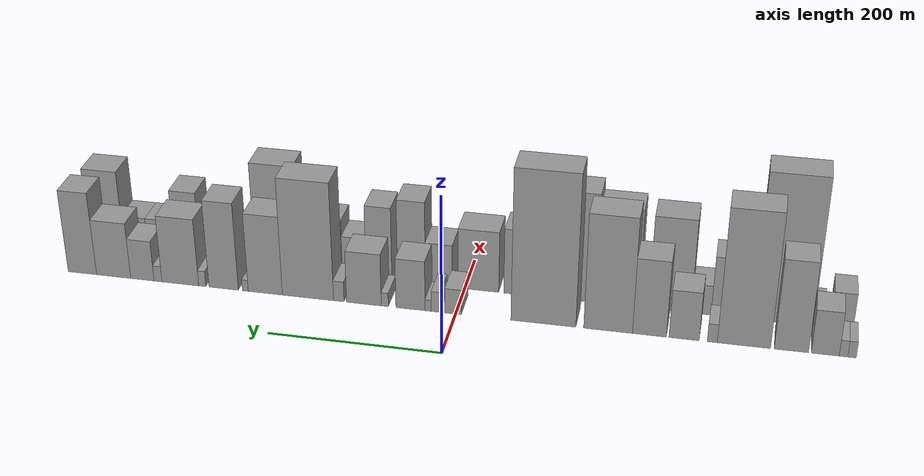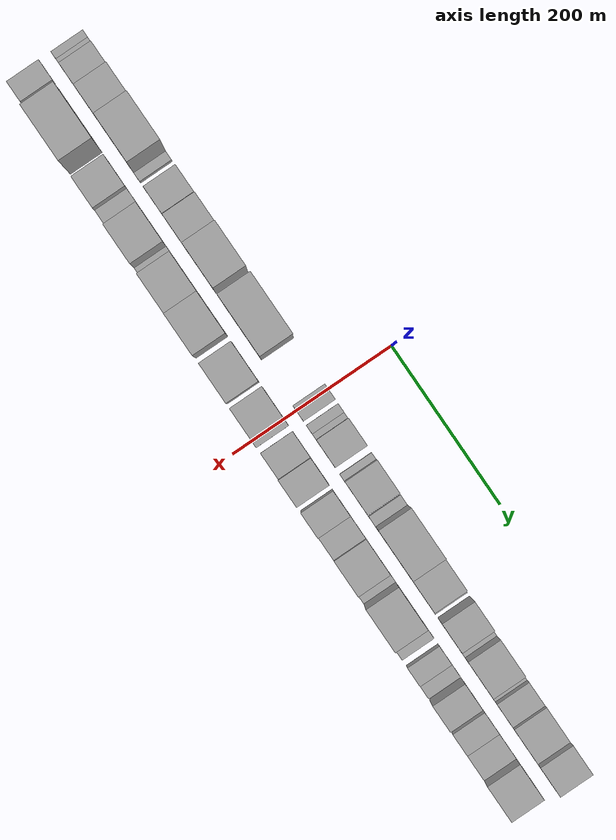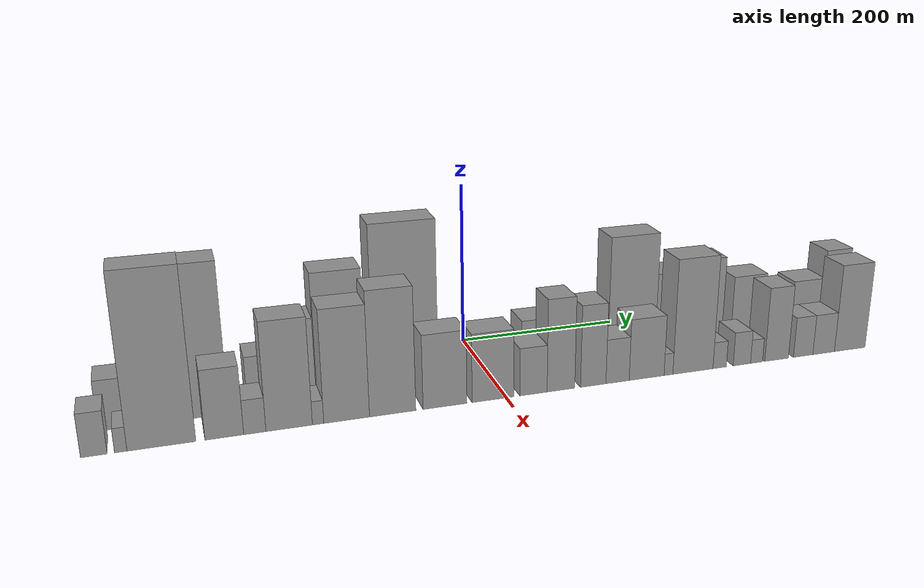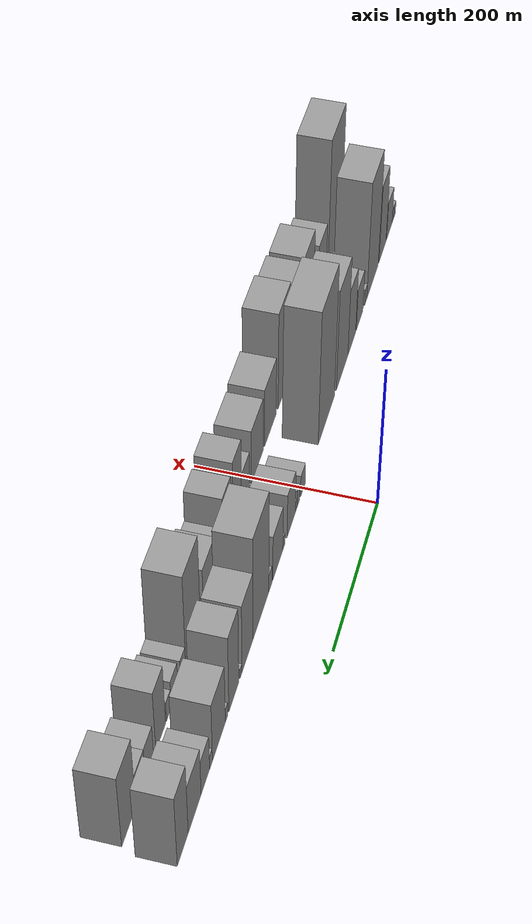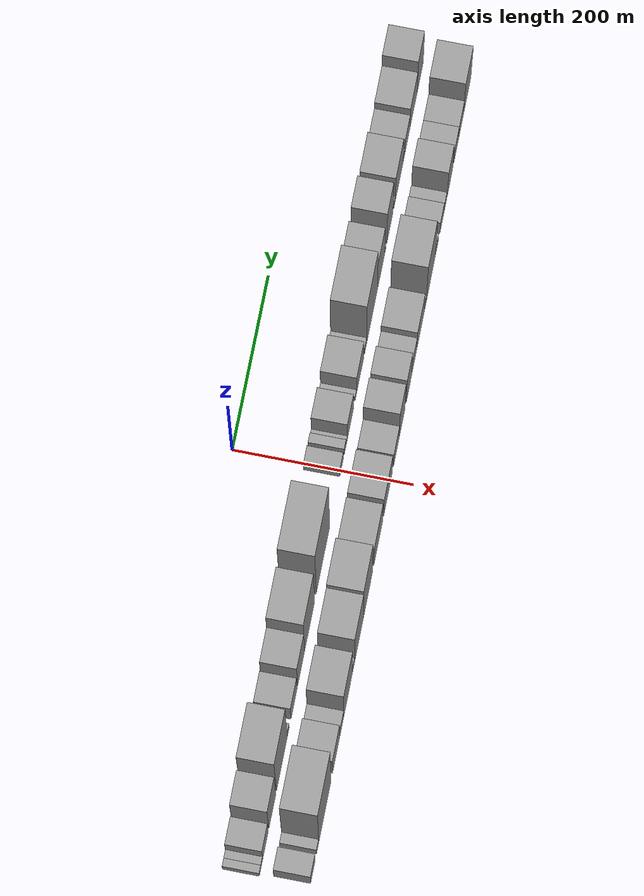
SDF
<sdf version="1.6">
 <world name="default">
  <scene>
   <sky><clouds><speed>12</speed></clouds></sky>
   <ambient>0.4 0.4 0.4 1</ambient>
   <background>0.7 0.7 0.7 1</background>
   <shadows>1</shadows>
  </scene>
  <gravity>0 0 -9.8066</gravity>
  <magnetic_field>6e-06 2.3e-05 -4.2e-05</magnetic_field>
  <physics default="0" name="default_physics" type="ode">
   <ode>
    <solver>
     <type>quick</type>
     <iters>10</iters>
     <sor>1.0</sor>
     <use_dynamic_moi_rescaling>0</use_dynamic_moi_rescaling>
    </solver>
    <constraints>
     <cfm>0</cfm>
     <erp>0.2</erp>
     <contact_max_correcting_vel>100</contact_max_correcting_vel>
     <contact_surface_layer>0.001</contact_surface_layer>
    </constraints>
   </ode>
   <max_step_size>0.004</max_step_size>
   <real_time_factor>1</real_time_factor>
   <real_time_update_rate>250</real_time_update_rate>
  </physics>
  <light name="sun" type="directional">
   <pose>0 0 10 0 0 0</pose>
   <diffuse>0.8 0.8 0.8 1</diffuse>
   <specular>0.2 0.2 0.2 1</specular>
   <attenuation>
    <range>1000</range>
    <constant>0.9</constant>
    <linear>0.01</linear>
    <quadratic>0.001</quadratic>
   </attenuation>
   <direction>-0.5 0.1 -0.9</direction>
  </light>
  <model name="building_1">
   <static>1</static>
   <pose>100.0000 -445.4162 0 0.000000 0.000000 0.000000</pose>
   <link name="link">
    <pose>0 0 10.50 0 0 0</pose>
    <collision name="collision"><geometry><box><size>40.0000 9.1677 21.0000</size></box></geometry></collision>
    <visual name="visual">
     <cast_shadows>0</cast_shadows>
     <geometry><box><size>40.0000 9.1677 21.0000</size></box></geometry>
     <material>
      <script>
       <uri>model://grey_wall/materials/scripts</uri>
       <uri>model://grey_wall/materials/textures</uri>
       <name>vrc/grey_wall</name>
      </script>
     </material>
    </visual>
   </link>
  </model>
  <model name="building_2">
   <static>1</static>
   <pose>100.0000 -436.2020 0 0.000000 0.000000 0.000000</pose>
   <link name="link">
    <pose>0 0 10.50 0 0 0</pose>
    <collision name="collision"><geometry><box><size>40.0000 9.2607 21.0000</size></box></geometry></collision>
    <visual name="visual">
     <cast_shadows>0</cast_shadows>
     <geometry><box><size>40.0000 9.2607 21.0000</size></box></geometry>
     <material>
      <script>
       <uri>model://grey_wall/materials/scripts</uri>
       <uri>model://grey_wall/materials/textures</uri>
       <name>vrc/grey_wall</name>
      </script>
     </material>
    </visual>
   </link>
  </model>
  <model name="building_3">
   <static>1</static>
   <pose>100.0000 -416.3900 0 0.000000 0.000000 0.000000</pose>
   <link name="link">
    <pose>0 0 28.50 0 0 0</pose>
    <collision name="collision"><geometry><box><size>40.0000 30.3633 57.0000</size></box></geometry></collision>
    <visual name="visual">
     <cast_shadows>0</cast_shadows>
     <geometry><box><size>40.0000 30.3633 57.0000</size></box></geometry>
     <material>
      <script>
       <uri>model://grey_wall/materials/scripts</uri>
       <uri>model://grey_wall/materials/textures</uri>
       <name>vrc/grey_wall</name>
      </script>
     </material>
    </visual>
   </link>
  </model>
  <model name="building_4">
   <static>1</static>
   <pose>100.0000 -379.4553 0 0.000000 0.000000 0.000000</pose>
   <link name="link">
    <pose>0 0 58.50 0 0 0</pose>
    <collision name="collision"><geometry><box><size>40.0000 37.5060 117.0000</size></box></geometry></collision>
    <visual name="visual">
     <cast_shadows>0</cast_shadows>
     <geometry><box><size>40.0000 37.5060 117.0000</size></box></geometry>
     <material>
      <script>
       <uri>model://grey_wall/materials/scripts</uri>
       <uri>model://grey_wall/materials/textures</uri>
       <name>vrc/grey_wall</name>
      </script>
     </material>
    </visual>
   </link>
  </model>
  <model name="building_5">
   <static>1</static>
   <pose>100.0000 -327.2482 0 0.000000 0.000000 0.000000</pose>
   <link name="link">
    <pose>0 0 87.00 0 0 0</pose>
    <collision name="collision"><geometry><box><size>40.0000 58.9083 174.0000</size></box></geometry></collision>
    <visual name="visual">
     <cast_shadows>0</cast_shadows>
     <geometry><box><size>40.0000 58.9083 174.0000</size></box></geometry>
     <material>
      <script>
       <uri>model://grey_wall/materials/scripts</uri>
       <uri>model://grey_wall/materials/textures</uri>
       <name>vrc/grey_wall</name>
      </script>
     </material>
    </visual>
   </link>
  </model>
  <model name="building_6">
   <static>1</static>
   <pose>100.0000 -292.2816 0 0.000000 0.000000 0.000000</pose>
   <link name="link">
    <pose>0 0 12.00 0 0 0</pose>
    <collision name="collision"><geometry><box><size>40.0000 11.0250 24.0000</size></box></geometry></collision>
    <visual name="visual">
     <cast_shadows>0</cast_shadows>
     <geometry><box><size>40.0000 11.0250 24.0000</size></box></geometry>
     <material>
      <script>
       <uri>model://grey_wall/materials/scripts</uri>
       <uri>model://grey_wall/materials/textures</uri>
       <name>vrc/grey_wall</name>
      </script>
     </material>
    </visual>
   </link>
  </model>
  <model name="building_7">
   <static>1</static>
   <pose>100.0000 -260.8822 0 0.000000 0.000000 0.000000</pose>
   <link name="link">
    <pose>0 0 31.50 0 0 0</pose>
    <collision name="collision"><geometry><box><size>40.0000 33.7737 63.0000</size></box></geometry></collision>
    <visual name="visual">
     <cast_shadows>0</cast_shadows>
     <geometry><box><size>40.0000 33.7737 63.0000</size></box></geometry>
     <material>
      <script>
       <uri>model://grey_wall/materials/scripts</uri>
       <uri>model://grey_wall/materials/textures</uri>
       <name>vrc/grey_wall</name>
      </script>
     </material>
    </visual>
   </link>
  </model>
  <model name="building_8">
   <static>1</static>
   <pose>100.0000 -221.9826 0 0.000000 0.000000 0.000000</pose>
   <link name="link">
    <pose>0 0 49.50 0 0 0</pose>
    <collision name="collision"><geometry><box><size>40.0000 38.0256 99.0000</size></box></geometry></collision>
    <visual name="visual">
     <cast_shadows>0</cast_shadows>
     <geometry><box><size>40.0000 38.0256 99.0000</size></box></geometry>
     <material>
      <script>
       <uri>model://grey_wall/materials/scripts</uri>
       <uri>model://grey_wall/materials/textures</uri>
       <name>vrc/grey_wall</name>
      </script>
     </material>
    </visual>
   </link>
  </model>
  <model name="building_9">
   <static>1</static>
   <pose>100.0000 -175.2884 0 0.000000 0.000000 0.000000</pose>
   <link name="link">
    <pose>0 0 75.00 0 0 0</pose>
    <collision name="collision"><geometry><box><size>40.0000 55.3628 150.0000</size></box></geometry></collision>
    <visual name="visual">
     <cast_shadows>0</cast_shadows>
     <geometry><box><size>40.0000 55.3628 150.0000</size></box></geometry>
     <material>
      <script>
       <uri>model://grey_wall/materials/scripts</uri>
       <uri>model://grey_wall/materials/textures</uri>
       <name>vrc/grey_wall</name>
      </script>
     </material>
    </visual>
   </link>
  </model>
  <model name="building_10">
   <static>1</static>
   <pose>100.0000 -101.2549 0 0.000000 0.000000 0.000000</pose>
   <link name="link">
    <pose>0 0 99.00 0 0 0</pose>
    <collision name="collision"><geometry><box><size>40.0000 74.7043 198.0000</size></box></geometry></collision>
    <visual name="visual">
     <cast_shadows>0</cast_shadows>
     <geometry><box><size>40.0000 74.7043 198.0000</size></box></geometry>
     <material>
      <script>
       <uri>model://grey_wall/materials/scripts</uri>
       <uri>model://grey_wall/materials/textures</uri>
       <name>vrc/grey_wall</name>
      </script>
     </material>
    </visual>
   </link>
  </model>
  <model name="building_11">
   <static>1</static>
   <pose>100.0000 3.4748 0 0.000000 0.000000 0.000000</pose>
   <link name="link">
    <pose>0 0 16.50 0 0 0</pose>
    <collision name="collision"><geometry><box><size>40.0000 19.5850 33.0000</size></box></geometry></collision>
    <visual name="visual">
     <cast_shadows>0</cast_shadows>
     <geometry><box><size>40.0000 19.5850 33.0000</size></box></geometry>
     <material>
      <script>
       <uri>model://grey_wall/materials/scripts</uri>
       <uri>model://grey_wall/materials/textures</uri>
       <name>vrc/grey_wall</name>
      </script>
     </material>
    </visual>
   </link>
  </model>
  <model name="building_12">
   <static>1</static>
   <pose>100.0000 23.7807 0 0.000000 0.000000 0.000000</pose>
   <link name="link">
    <pose>0 0 13.50 0 0 0</pose>
    <collision name="collision"><geometry><box><size>40.0000 11.0268 27.0000</size></box></geometry></collision>
    <visual name="visual">
     <cast_shadows>0</cast_shadows>
     <geometry><box><size>40.0000 11.0268 27.0000</size></box></geometry>
     <material>
      <script>
       <uri>model://grey_wall/materials/scripts</uri>
       <uri>model://grey_wall/materials/textures</uri>
       <name>vrc/grey_wall</name>
      </script>
     </material>
    </visual>
   </link>
  </model>
  <model name="building_13">
   <static>1</static>
   <pose>100.0000 32.8451 0 0.000000 0.000000 0.000000</pose>
   <link name="link">
    <pose>0 0 7.50 0 0 0</pose>
    <collision name="collision"><geometry><box><size>40.0000 7.1020 15.0000</size></box></geometry></collision>
    <visual name="visual">
     <cast_shadows>0</cast_shadows>
     <geometry><box><size>40.0000 7.1020 15.0000</size></box></geometry>
     <material>
      <script>
       <uri>model://grey_wall/materials/scripts</uri>
       <uri>model://grey_wall/materials/textures</uri>
       <name>vrc/grey_wall</name>
      </script>
     </material>
    </visual>
   </link>
  </model>
  <model name="building_14">
   <static>1</static>
   <pose>100.0000 53.5605 0 0.000000 0.000000 0.000000</pose>
   <link name="link">
    <pose>0 0 33.00 0 0 0</pose>
    <collision name="collision"><geometry><box><size>40.0000 34.3290 66.0000</size></box></geometry></collision>
    <visual name="visual">
     <cast_shadows>0</cast_shadows>
     <geometry><box><size>40.0000 34.3290 66.0000</size></box></geometry>
     <material>
      <script>
       <uri>model://grey_wall/materials/scripts</uri>
       <uri>model://grey_wall/materials/textures</uri>
       <name>vrc/grey_wall</name>
      </script>
     </material>
    </visual>
   </link>
  </model>
  <model name="building_15">
   <static>1</static>
   <pose>100.0000 83.9469 0 0.000000 0.000000 0.000000</pose>
   <link name="link">
    <pose>0 0 9.00 0 0 0</pose>
    <collision name="collision"><geometry><box><size>40.0000 8.4436 18.0000</size></box></geometry></collision>
    <visual name="visual">
     <cast_shadows>0</cast_shadows>
     <geometry><box><size>40.0000 8.4436 18.0000</size></box></geometry>
     <material>
      <script>
       <uri>model://grey_wall/materials/scripts</uri>
       <uri>model://grey_wall/materials/textures</uri>
       <name>vrc/grey_wall</name>
      </script>
     </material>
    </visual>
   </link>
  </model>
  <model name="building_16">
   <static>1</static>
   <pose>100.0000 108.8338 0 0.000000 0.000000 0.000000</pose>
   <link name="link">
    <pose>0 0 34.50 0 0 0</pose>
    <collision name="collision"><geometry><box><size>40.0000 41.3303 69.0000</size></box></geometry></collision>
    <visual name="visual">
     <cast_shadows>0</cast_shadows>
     <geometry><box><size>40.0000 41.3303 69.0000</size></box></geometry>
     <material>
      <script>
       <uri>model://grey_wall/materials/scripts</uri>
       <uri>model://grey_wall/materials/textures</uri>
       <name>vrc/grey_wall</name>
      </script>
     </material>
    </visual>
   </link>
  </model>
  <model name="building_17">
   <static>1</static>
   <pose>100.0000 138.8338 0 0.000000 0.000000 0.000000</pose>
   <link name="link">
    <pose>0 0 13.50 0 0 0</pose>
    <collision name="collision"><geometry><box><size>40.0000 12.6697 27.0000</size></box></geometry></collision>
    <visual name="visual">
     <cast_shadows>0</cast_shadows>
     <geometry><box><size>40.0000 12.6697 27.0000</size></box></geometry>
     <material>
      <script>
       <uri>model://grey_wall/materials/scripts</uri>
       <uri>model://grey_wall/materials/textures</uri>
       <name>vrc/grey_wall</name>
      </script>
     </material>
    </visual>
   </link>
  </model>
  <model name="building_18">
   <static>1</static>
   <pose>100.0000 176.0116 0 0.000000 0.000000 0.000000</pose>
   <link name="link">
    <pose>0 0 78.00 0 0 0</pose>
    <collision name="collision"><geometry><box><size>40.0000 61.6860 156.0000</size></box></geometry></collision>
    <visual name="visual">
     <cast_shadows>0</cast_shadows>
     <geometry><box><size>40.0000 61.6860 156.0000</size></box></geometry>
     <material>
      <script>
       <uri>model://grey_wall/materials/scripts</uri>
       <uri>model://grey_wall/materials/textures</uri>
       <name>vrc/grey_wall</name>
      </script>
     </material>
    </visual>
   </link>
  </model>
  <model name="building_19">
   <static>1</static>
   <pose>100.0000 227.6745 0 0.000000 0.000000 0.000000</pose>
   <link name="link">
    <pose>0 0 52.50 0 0 0</pose>
    <collision name="collision"><geometry><box><size>40.0000 41.6397 105.0000</size></box></geometry></collision>
    <visual name="visual">
     <cast_shadows>0</cast_shadows>
     <geometry><box><size>40.0000 41.6397 105.0000</size></box></geometry>
     <material>
      <script>
       <uri>model://grey_wall/materials/scripts</uri>
       <uri>model://grey_wall/materials/textures</uri>
       <name>vrc/grey_wall</name>
      </script>
     </material>
    </visual>
   </link>
  </model>
  <model name="building_20">
   <static>1</static>
   <pose>100.0000 252.0448 0 0.000000 0.000000 0.000000</pose>
   <link name="link">
    <pose>0 0 7.50 0 0 0</pose>
    <collision name="collision"><geometry><box><size>40.0000 7.1010 15.0000</size></box></geometry></collision>
    <visual name="visual">
     <cast_shadows>0</cast_shadows>
     <geometry><box><size>40.0000 7.1010 15.0000</size></box></geometry>
     <material>
      <script>
       <uri>model://grey_wall/materials/scripts</uri>
       <uri>model://grey_wall/materials/textures</uri>
       <name>vrc/grey_wall</name>
      </script>
     </material>
    </visual>
   </link>
  </model>
  <model name="building_21">
   <static>1</static>
   <pose>100.0000 278.5769 0 0.000000 0.000000 0.000000</pose>
   <link name="link">
    <pose>0 0 58.50 0 0 0</pose>
    <collision name="collision"><geometry><box><size>40.0000 35.9632 117.0000</size></box></geometry></collision>
    <visual name="visual">
     <cast_shadows>0</cast_shadows>
     <geometry><box><size>40.0000 35.9632 117.0000</size></box></geometry>
     <material>
      <script>
       <uri>model://grey_wall/materials/scripts</uri>
       <uri>model://grey_wall/materials/textures</uri>
       <name>vrc/grey_wall</name>
      </script>
     </material>
    </visual>
   </link>
  </model>
  <model name="building_22">
   <static>1</static>
   <pose>100.0000 304.9520 0 0.000000 0.000000 0.000000</pose>
   <link name="link">
    <pose>0 0 10.50 0 0 0</pose>
    <collision name="collision"><geometry><box><size>40.0000 8.7869 21.0000</size></box></geometry></collision>
    <visual name="visual">
     <cast_shadows>0</cast_shadows>
     <geometry><box><size>40.0000 8.7869 21.0000</size></box></geometry>
     <material>
      <script>
       <uri>model://grey_wall/materials/scripts</uri>
       <uri>model://grey_wall/materials/textures</uri>
       <name>vrc/grey_wall</name>
      </script>
     </material>
    </visual>
   </link>
  </model>
  <model name="building_23">
   <static>1</static>
   <pose>100.0000 332.1216 0 0.000000 0.000000 0.000000</pose>
   <link name="link">
    <pose>0 0 45.00 0 0 0</pose>
    <collision name="collision"><geometry><box><size>40.0000 45.5524 90.0000</size></box></geometry></collision>
    <visual name="visual">
     <cast_shadows>0</cast_shadows>
     <geometry><box><size>40.0000 45.5524 90.0000</size></box></geometry>
     <material>
      <script>
       <uri>model://grey_wall/materials/scripts</uri>
       <uri>model://grey_wall/materials/textures</uri>
       <name>vrc/grey_wall</name>
      </script>
     </material>
    </visual>
   </link>
  </model>
  <model name="building_24">
   <static>1</static>
   <pose>100.0000 359.8250 0 0.000000 0.000000 0.000000</pose>
   <link name="link">
    <pose>0 0 10.50 0 0 0</pose>
    <collision name="collision"><geometry><box><size>40.0000 9.8544 21.0000</size></box></geometry></collision>
    <visual name="visual">
     <cast_shadows>0</cast_shadows>
     <geometry><box><size>40.0000 9.8544 21.0000</size></box></geometry>
     <material>
      <script>
       <uri>model://grey_wall/materials/scripts</uri>
       <uri>model://grey_wall/materials/textures</uri>
       <name>vrc/grey_wall</name>
      </script>
     </material>
    </visual>
   </link>
  </model>
  <model name="building_25">
   <static>1</static>
   <pose>100.0000 379.3096 0 0.000000 0.000000 0.000000</pose>
   <link name="link">
    <pose>0 0 27.00 0 0 0</pose>
    <collision name="collision"><geometry><box><size>40.0000 29.1148 54.0000</size></box></geometry></collision>
    <visual name="visual">
     <cast_shadows>0</cast_shadows>
     <geometry><box><size>40.0000 29.1148 54.0000</size></box></geometry>
     <material>
      <script>
       <uri>model://grey_wall/materials/scripts</uri>
       <uri>model://grey_wall/materials/textures</uri>
       <name>vrc/grey_wall</name>
      </script>
     </material>
    </visual>
   </link>
  </model>
  <model name="building_26">
   <static>1</static>
   <pose>100.0000 415.3340 0 0.000000 0.000000 0.000000</pose>
   <link name="link">
    <pose>0 0 37.50 0 0 0</pose>
    <collision name="collision"><geometry><box><size>40.0000 42.9338 75.0000</size></box></geometry></collision>
    <visual name="visual">
     <cast_shadows>0</cast_shadows>
     <geometry><box><size>40.0000 42.9338 75.0000</size></box></geometry>
     <material>
      <script>
       <uri>model://grey_wall/materials/scripts</uri>
       <uri>model://grey_wall/materials/textures</uri>
       <name>vrc/grey_wall</name>
      </script>
     </material>
    </visual>
   </link>
  </model>
  <model name="building_27">
   <static>1</static>
   <pose>100.0000 454.7320 0 0.000000 0.000000 0.000000</pose>
   <link name="link">
    <pose>0 0 55.50 0 0 0</pose>
    <collision name="collision"><geometry><box><size>40.0000 35.8622 111.0000</size></box></geometry></collision>
    <visual name="visual">
     <cast_shadows>0</cast_shadows>
     <geometry><box><size>40.0000 35.8622 111.0000</size></box></geometry>
     <material>
      <script>
       <uri>model://grey_wall/materials/scripts</uri>
       <uri>model://grey_wall/materials/textures</uri>
       <name>vrc/grey_wall</name>
      </script>
     </material>
    </visual>
   </link>
  </model>
  <model name="building_28">
   <static>1</static>
   <pose>155.0000 -434.3783 0 0.000000 0.000000 0.000000</pose>
   <link name="link">
    <pose>0 0 24.00 0 0 0</pose>
    <collision name="collision"><geometry><box><size>40.0000 25.2433 48.0000</size></box></geometry></collision>
    <visual name="visual">
     <cast_shadows>0</cast_shadows>
     <geometry><box><size>40.0000 25.2433 48.0000</size></box></geometry>
     <material>
      <script>
       <uri>model://grey_wall/materials/scripts</uri>
       <uri>model://grey_wall/materials/textures</uri>
       <name>vrc/grey_wall</name>
      </script>
     </material>
    </visual>
   </link>
  </model>
  <model name="building_29">
   <static>1</static>
   <pose>155.0000 -408.7832 0 0.000000 0.000000 0.000000</pose>
   <link name="link">
    <pose>0 0 13.50 0 0 0</pose>
    <collision name="collision"><geometry><box><size>40.0000 11.9470 27.0000</size></box></geometry></collision>
    <visual name="visual">
     <cast_shadows>0</cast_shadows>
     <geometry><box><size>40.0000 11.9470 27.0000</size></box></geometry>
     <material>
      <script>
       <uri>model://grey_wall/materials/scripts</uri>
       <uri>model://grey_wall/materials/textures</uri>
       <name>vrc/grey_wall</name>
      </script>
     </material>
    </visual>
   </link>
  </model>
  <model name="building_30">
   <static>1</static>
   <pose>155.0000 -369.1477 0 0.000000 0.000000 0.000000</pose>
   <link name="link">
    <pose>0 0 96.00 0 0 0</pose>
    <collision name="collision"><geometry><box><size>40.0000 67.3240 192.0000</size></box></geometry></collision>
    <visual name="visual">
     <cast_shadows>0</cast_shadows>
     <geometry><box><size>40.0000 67.3240 192.0000</size></box></geometry>
     <material>
      <script>
       <uri>model://grey_wall/materials/scripts</uri>
       <uri>model://grey_wall/materials/textures</uri>
       <name>vrc/grey_wall</name>
      </script>
     </material>
    </visual>
   </link>
  </model>
  <model name="building_31">
   <static>1</static>
   <pose>155.0000 -306.9335 0 0.000000 0.000000 0.000000</pose>
   <link name="link">
    <pose>0 0 39.00 0 0 0</pose>
    <collision name="collision"><geometry><box><size>40.0000 39.1043 78.0000</size></box></geometry></collision>
    <visual name="visual">
     <cast_shadows>0</cast_shadows>
     <geometry><box><size>40.0000 39.1043 78.0000</size></box></geometry>
     <material>
      <script>
       <uri>model://grey_wall/materials/scripts</uri>
       <uri>model://grey_wall/materials/textures</uri>
       <name>vrc/grey_wall</name>
      </script>
     </material>
    </visual>
   </link>
  </model>
  <model name="building_32">
   <static>1</static>
   <pose>155.0000 -275.9860 0 0.000000 0.000000 0.000000</pose>
   <link name="link">
    <pose>0 0 19.50 0 0 0</pose>
    <collision name="collision"><geometry><box><size>40.0000 22.7909 39.0000</size></box></geometry></collision>
    <visual name="visual">
     <cast_shadows>0</cast_shadows>
     <geometry><box><size>40.0000 22.7909 39.0000</size></box></geometry>
     <material>
      <script>
       <uri>model://grey_wall/materials/scripts</uri>
       <uri>model://grey_wall/materials/textures</uri>
       <name>vrc/grey_wall</name>
      </script>
     </material>
    </visual>
   </link>
  </model>
  <model name="building_33">
   <static>1</static>
   <pose>155.0000 -240.3573 0 0.000000 0.000000 0.000000</pose>
   <link name="link">
    <pose>0 0 61.50 0 0 0</pose>
    <collision name="collision"><geometry><box><size>40.0000 48.4665 123.0000</size></box></geometry></collision>
    <visual name="visual">
     <cast_shadows>0</cast_shadows>
     <geometry><box><size>40.0000 48.4665 123.0000</size></box></geometry>
     <material>
      <script>
       <uri>model://grey_wall/materials/scripts</uri>
       <uri>model://grey_wall/materials/textures</uri>
       <name>vrc/grey_wall</name>
      </script>
     </material>
    </visual>
   </link>
  </model>
  <model name="building_34">
   <static>1</static>
   <pose>155.0000 -210.1158 0 0.000000 0.000000 0.000000</pose>
   <link name="link">
    <pose>0 0 13.50 0 0 0</pose>
    <collision name="collision"><geometry><box><size>40.0000 12.0165 27.0000</size></box></geometry></collision>
    <visual name="visual">
     <cast_shadows>0</cast_shadows>
     <geometry><box><size>40.0000 12.0165 27.0000</size></box></geometry>
     <material>
      <script>
       <uri>model://grey_wall/materials/scripts</uri>
       <uri>model://grey_wall/materials/textures</uri>
       <name>vrc/grey_wall</name>
      </script>
     </material>
    </visual>
   </link>
  </model>
  <model name="building_35">
   <static>1</static>
   <pose>155.0000 -179.5183 0 0.000000 0.000000 0.000000</pose>
   <link name="link">
    <pose>0 0 64.50 0 0 0</pose>
    <collision name="collision"><geometry><box><size>40.0000 49.1785 129.0000</size></box></geometry></collision>
    <visual name="visual">
     <cast_shadows>0</cast_shadows>
     <geometry><box><size>40.0000 49.1785 129.0000</size></box></geometry>
     <material>
      <script>
       <uri>model://grey_wall/materials/scripts</uri>
       <uri>model://grey_wall/materials/textures</uri>
       <name>vrc/grey_wall</name>
      </script>
     </material>
    </visual>
   </link>
  </model>
  <model name="building_36">
   <static>1</static>
   <pose>155.0000 -129.3682 0 0.000000 0.000000 0.000000</pose>
   <link name="link">
    <pose>0 0 72.00 0 0 0</pose>
    <collision name="collision"><geometry><box><size>40.0000 51.1216 144.0000</size></box></geometry></collision>
    <visual name="visual">
     <cast_shadows>0</cast_shadows>
     <geometry><box><size>40.0000 51.1216 144.0000</size></box></geometry>
     <material>
      <script>
       <uri>model://grey_wall/materials/scripts</uri>
       <uri>model://grey_wall/materials/textures</uri>
       <name>vrc/grey_wall</name>
      </script>
     </material>
    </visual>
   </link>
  </model>
  <model name="building_37">
   <static>1</static>
   <pose>155.0000 -70.9945 0 0.000000 0.000000 0.000000</pose>
   <link name="link">
    <pose>0 0 43.50 0 0 0</pose>
    <collision name="collision"><geometry><box><size>40.0000 49.6259 87.0000</size></box></geometry></collision>
    <visual name="visual">
     <cast_shadows>0</cast_shadows>
     <geometry><box><size>40.0000 49.6259 87.0000</size></box></geometry>
     <material>
      <script>
       <uri>model://grey_wall/materials/scripts</uri>
       <uri>model://grey_wall/materials/textures</uri>
       <name>vrc/grey_wall</name>
      </script>
     </material>
    </visual>
   </link>
  </model>
  <model name="building_38">
   <static>1</static>
   <pose>155.0000 -15.8966 0 0.000000 0.000000 0.000000</pose>
   <link name="link">
    <pose>0 0 40.50 0 0 0</pose>
    <collision name="collision"><geometry><box><size>40.0000 48.5698 81.0000</size></box></geometry></collision>
    <visual name="visual">
     <cast_shadows>0</cast_shadows>
     <geometry><box><size>40.0000 48.5698 81.0000</size></box></geometry>
     <material>
      <script>
       <uri>model://grey_wall/materials/scripts</uri>
       <uri>model://grey_wall/materials/textures</uri>
       <name>vrc/grey_wall</name>
      </script>
     </material>
    </visual>
   </link>
  </model>
  <model name="building_39">
   <static>1</static>
   <pose>155.0000 31.6403 0 0.000000 0.000000 0.000000</pose>
   <link name="link">
    <pose>0 0 28.50 0 0 0</pose>
    <collision name="collision"><geometry><box><size>40.0000 32.5040 57.0000</size></box></geometry></collision>
    <visual name="visual">
     <cast_shadows>0</cast_shadows>
     <geometry><box><size>40.0000 32.5040 57.0000</size></box></geometry>
     <material>
      <script>
       <uri>model://grey_wall/materials/scripts</uri>
       <uri>model://grey_wall/materials/textures</uri>
       <name>vrc/grey_wall</name>
      </script>
     </material>
    </visual>
   </link>
  </model>
  <model name="building_40">
   <static>1</static>
   <pose>155.0000 64.5791 0 0.000000 0.000000 0.000000</pose>
   <link name="link">
    <pose>0 0 55.50 0 0 0</pose>
    <collision name="collision"><geometry><box><size>40.0000 33.3735 111.0000</size></box></geometry></collision>
    <visual name="visual">
     <cast_shadows>0</cast_shadows>
     <geometry><box><size>40.0000 33.3735 111.0000</size></box></geometry>
     <material>
      <script>
       <uri>model://grey_wall/materials/scripts</uri>
       <uri>model://grey_wall/materials/textures</uri>
       <name>vrc/grey_wall</name>
      </script>
     </material>
    </visual>
   </link>
  </model>
  <model name="building_41">
   <static>1</static>
   <pose>155.0000 103.9165 0 0.000000 0.000000 0.000000</pose>
   <link name="link">
    <pose>0 0 49.50 0 0 0</pose>
    <collision name="collision"><geometry><box><size>40.0000 31.3014 99.0000</size></box></geometry></collision>
    <visual name="visual">
     <cast_shadows>0</cast_shadows>
     <geometry><box><size>40.0000 31.3014 99.0000</size></box></geometry>
     <material>
      <script>
       <uri>model://grey_wall/materials/scripts</uri>
       <uri>model://grey_wall/materials/textures</uri>
       <name>vrc/grey_wall</name>
      </script>
     </material>
    </visual>
   </link>
  </model>
  <model name="building_42">
   <static>1</static>
   <pose>155.0000 134.0524 0 0.000000 0.000000 0.000000</pose>
   <link name="link">
    <pose>0 0 27.00 0 0 0</pose>
    <collision name="collision"><geometry><box><size>40.0000 28.9704 54.0000</size></box></geometry></collision>
    <visual name="visual">
     <cast_shadows>0</cast_shadows>
     <geometry><box><size>40.0000 28.9704 54.0000</size></box></geometry>
     <material>
      <script>
       <uri>model://grey_wall/materials/scripts</uri>
       <uri>model://grey_wall/materials/textures</uri>
       <name>vrc/grey_wall</name>
      </script>
     </material>
    </visual>
   </link>
  </model>
  <model name="building_43">
   <static>1</static>
   <pose>155.0000 170.6576 0 0.000000 0.000000 0.000000</pose>
   <link name="link">
    <pose>0 0 37.50 0 0 0</pose>
    <collision name="collision"><geometry><box><size>40.0000 44.2399 75.0000</size></box></geometry></collision>
    <visual name="visual">
     <cast_shadows>0</cast_shadows>
     <geometry><box><size>40.0000 44.2399 75.0000</size></box></geometry>
     <material>
      <script>
       <uri>model://grey_wall/materials/scripts</uri>
       <uri>model://grey_wall/materials/textures</uri>
       <name>vrc/grey_wall</name>
      </script>
     </material>
    </visual>
   </link>
  </model>
  <model name="building_44">
   <static>1</static>
   <pose>155.0000 198.4314 0 0.000000 0.000000 0.000000</pose>
   <link name="link">
    <pose>0 0 13.50 0 0 0</pose>
    <collision name="collision"><geometry><box><size>40.0000 11.3076 27.0000</size></box></geometry></collision>
    <visual name="visual">
     <cast_shadows>0</cast_shadows>
     <geometry><box><size>40.0000 11.3076 27.0000</size></box></geometry>
     <material>
      <script>
       <uri>model://grey_wall/materials/scripts</uri>
       <uri>model://grey_wall/materials/textures</uri>
       <name>vrc/grey_wall</name>
      </script>
     </material>
    </visual>
   </link>
  </model>
  <model name="building_45">
   <static>1</static>
   <pose>155.0000 230.2094 0 0.000000 0.000000 0.000000</pose>
   <link name="link">
    <pose>0 0 70.50 0 0 0</pose>
    <collision name="collision"><geometry><box><size>40.0000 52.2484 141.0000</size></box></geometry></collision>
    <visual name="visual">
     <cast_shadows>0</cast_shadows>
     <geometry><box><size>40.0000 52.2484 141.0000</size></box></geometry>
     <material>
      <script>
       <uri>model://grey_wall/materials/scripts</uri>
       <uri>model://grey_wall/materials/textures</uri>
       <name>vrc/grey_wall</name>
      </script>
     </material>
    </visual>
   </link>
  </model>
  <model name="building_46">
   <static>1</static>
   <pose>155.0000 265.2321 0 0.000000 0.000000 0.000000</pose>
   <link name="link">
    <pose>0 0 16.50 0 0 0</pose>
    <collision name="collision"><geometry><box><size>40.0000 17.7971 33.0000</size></box></geometry></collision>
    <visual name="visual">
     <cast_shadows>0</cast_shadows>
     <geometry><box><size>40.0000 17.7971 33.0000</size></box></geometry>
     <material>
      <script>
       <uri>model://grey_wall/materials/scripts</uri>
       <uri>model://grey_wall/materials/textures</uri>
       <name>vrc/grey_wall</name>
      </script>
     </material>
    </visual>
   </link>
  </model>
  <model name="building_47">
   <static>1</static>
   <pose>155.0000 294.7673 0 0.000000 0.000000 0.000000</pose>
   <link name="link">
    <pose>0 0 21.00 0 0 0</pose>
    <collision name="collision"><geometry><box><size>40.0000 23.2733 42.0000</size></box></geometry></collision>
    <visual name="visual">
     <cast_shadows>0</cast_shadows>
     <geometry><box><size>40.0000 23.2733 42.0000</size></box></geometry>
     <material>
      <script>
       <uri>model://grey_wall/materials/scripts</uri>
       <uri>model://grey_wall/materials/textures</uri>
       <name>vrc/grey_wall</name>
      </script>
     </material>
    </visual>
   </link>
  </model>
  <model name="building_48">
   <static>1</static>
   <pose>155.0000 314.5101 0 0.000000 0.000000 0.000000</pose>
   <link name="link">
    <pose>0 0 15.00 0 0 0</pose>
    <collision name="collision"><geometry><box><size>40.0000 16.2123 30.0000</size></box></geometry></collision>
    <visual name="visual">
     <cast_shadows>0</cast_shadows>
     <geometry><box><size>40.0000 16.2123 30.0000</size></box></geometry>
     <material>
      <script>
       <uri>model://grey_wall/materials/scripts</uri>
       <uri>model://grey_wall/materials/textures</uri>
       <name>vrc/grey_wall</name>
      </script>
     </material>
    </visual>
   </link>
  </model>
  <model name="building_49">
   <static>1</static>
   <pose>155.0000 341.7865 0 0.000000 0.000000 0.000000</pose>
   <link name="link">
    <pose>0 0 46.50 0 0 0</pose>
    <collision name="collision"><geometry><box><size>40.0000 32.3405 93.0000</size></box></geometry></collision>
    <visual name="visual">
     <cast_shadows>0</cast_shadows>
     <geometry><box><size>40.0000 32.3405 93.0000</size></box></geometry>
     <material>
      <script>
       <uri>model://grey_wall/materials/scripts</uri>
       <uri>model://grey_wall/materials/textures</uri>
       <name>vrc/grey_wall</name>
      </script>
     </material>
    </visual>
   </link>
  </model>
  <model name="building_50">
   <static>1</static>
   <pose>155.0000 378.4575 0 0.000000 0.000000 0.000000</pose>
   <link name="link">
    <pose>0 0 25.50 0 0 0</pose>
    <collision name="collision"><geometry><box><size>40.0000 27.0016 51.0000</size></box></geometry></collision>
    <visual name="visual">
     <cast_shadows>0</cast_shadows>
     <geometry><box><size>40.0000 27.0016 51.0000</size></box></geometry>
     <material>
      <script>
       <uri>model://grey_wall/materials/scripts</uri>
       <uri>model://grey_wall/materials/textures</uri>
       <name>vrc/grey_wall</name>
      </script>
     </material>
    </visual>
   </link>
  </model>
  <model name="building_51">
   <static>1</static>
   <pose>155.0000 407.1364 0 0.000000 0.000000 0.000000</pose>
   <link name="link">
    <pose>0 0 25.50 0 0 0</pose>
    <collision name="collision"><geometry><box><size>40.0000 30.3562 51.0000</size></box></geometry></collision>
    <visual name="visual">
     <cast_shadows>0</cast_shadows>
     <geometry><box><size>40.0000 30.3562 51.0000</size></box></geometry>
     <material>
      <script>
       <uri>model://grey_wall/materials/scripts</uri>
       <uri>model://grey_wall/materials/textures</uri>
       <name>vrc/grey_wall</name>
      </script>
     </material>
    </visual>
   </link>
  </model>
  <model name="building_52">
   <static>1</static>
   <pose>155.0000 444.1493 0 0.000000 0.000000 0.000000</pose>
   <link name="link">
    <pose>0 0 55.50 0 0 0</pose>
    <collision name="collision"><geometry><box><size>40.0000 43.6696 111.0000</size></box></geometry></collision>
    <visual name="visual">
     <cast_shadows>0</cast_shadows>
     <geometry><box><size>40.0000 43.6696 111.0000</size></box></geometry>
     <material>
      <script>
       <uri>model://grey_wall/materials/scripts</uri>
       <uri>model://grey_wall/materials/textures</uri>
       <name>vrc/grey_wall</name>
      </script>
     </material>
    </visual>
   </link>
  </model>
 </world>
</sdf>
